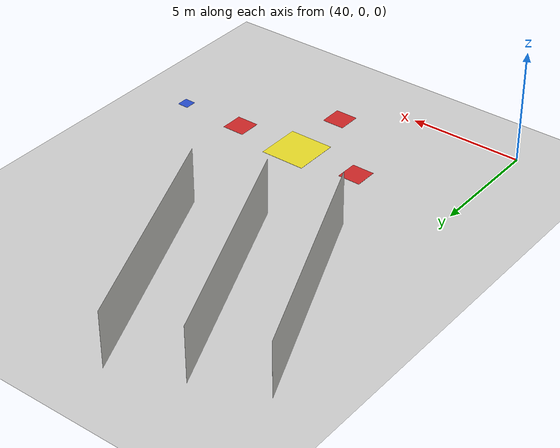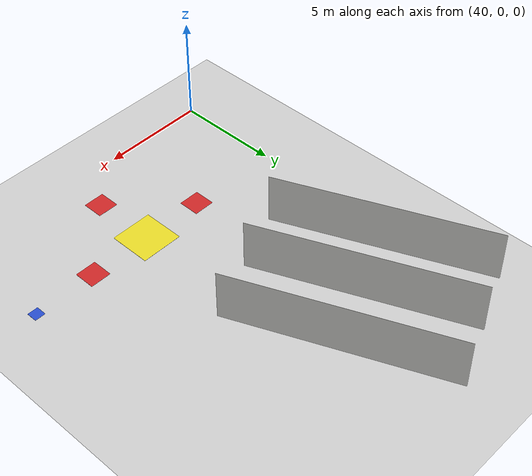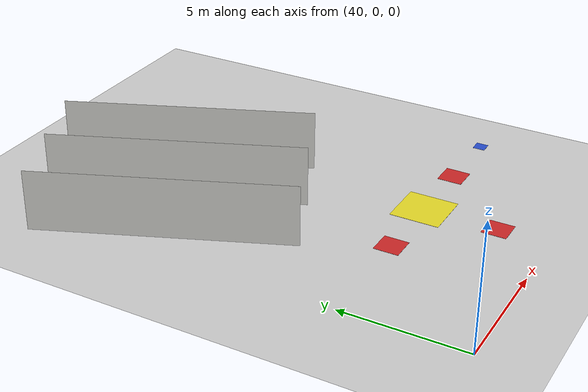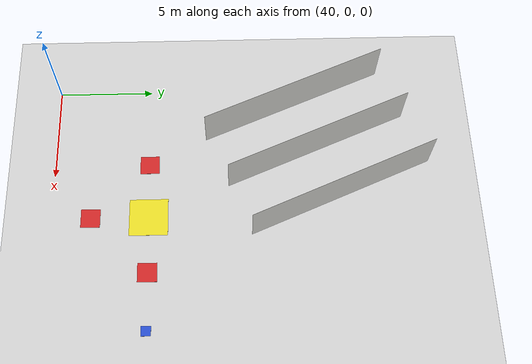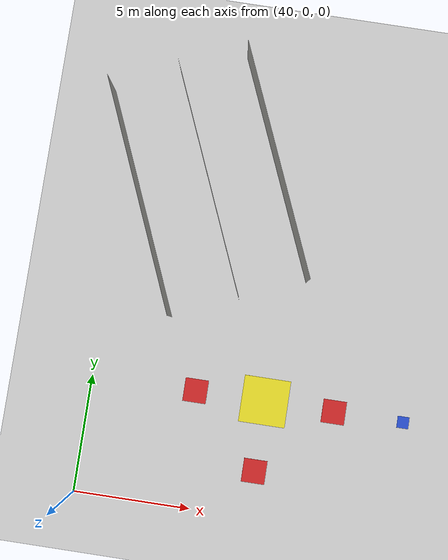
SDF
<sdf version="1.6">
 <world name="default">
  <model name="ground_plane">
   <static>1</static>
   <link name="link">
    <collision name="collision">
     <geometry><plane><normal>0 0 1</normal><size>100 100</size></plane></geometry>
     <surface><friction><ode><mu>100</mu><mu2>50</mu2></ode></friction></surface>
    </collision>
    <visual name="visual">
     <cast_shadows>0</cast_shadows>
     <geometry><plane><normal>0 0 1</normal><size>100 100</size></plane></geometry>
     <material>
      <script><uri>file://media/materials/scripts/gazebo.material</uri><name>Gazebo/Grey</name></script>
     </material>
    </visual>
   </link>
  </model>
  <model name="35">
   <pose>43.75 13.875 0 0 -0 0</pose>
   <link name="Wall_2">
    <collision name="Wall_2_Collision">
     <geometry><box><size>10.2688 0.001 2.5</size></box></geometry>
     <pose>0 0 1.25 0 -0 0</pose>
    </collision>
    <visual name="Wall_2_Visual">
     <pose>0 0 1.25 0 -0 0</pose>
     <geometry><box><size>10.2688 0.001 2.5</size></box></geometry>
     <material>
      <script><uri>file://media/materials/scripts/gazebo.material</uri><name>Gazebo/CeilingTiled</name></script>
      <ambient>0.435294 0.796078 0.67451 1</ambient>
     </material>
    </visual>
    <pose>0 0 0 0 -0 1.9706</pose>
   </link>
   <static>1</static>
  </model>
  <model name="35_clone">
   <pose>40.9866 12.7073 0 0 -0 0</pose>
   <link name="Wall_2">
    <collision name="Wall_2_Collision">
     <geometry><box><size>10.2688 0.001 2.5</size></box></geometry>
     <pose>0 0 1.25 0 -0 0</pose>
    </collision>
    <visual name="Wall_2_Visual">
     <pose>0 0 1.25 0 -0 0</pose>
     <geometry><box><size>10.2688 0.001 2.5</size></box></geometry>
     <material>
      <script><uri>file://media/materials/scripts/gazebo.material</uri><name>Gazebo/CeilingTiled</name></script>
      <ambient>0.435294 0.796078 0.67451 1</ambient>
     </material>
    </visual>
    <pose>0 0 0 0 -0 1.9706</pose>
   </link>
   <static>1</static>
  </model>
  <model name="35_clone_0">
   <pose>46.5134 15.0427 0 0 -0 0</pose>
   <link name="Wall_2">
    <collision name="Wall_2_Collision">
     <geometry><box><size>10.2688 0.001 2.5</size></box></geometry>
     <pose>0 0 1.25 0 -0 0</pose>
    </collision>
    <visual name="Wall_2_Visual">
     <pose>0 0 1.25 0 -0 0</pose>
     <geometry><box><size>10.2688 0.001 2.5</size></box></geometry>
     <material>
      <script><uri>file://media/materials/scripts/gazebo.material</uri><name>Gazebo/CeilingTiled</name></script>
      <ambient>0.435294 0.796078 0.67451 1</ambient>
     </material>
    </visual>
    <pose>0 0 0 0 -0 1.9706</pose>
   </link>
   <static>1</static>
  </model>
  <model name="my_objectT4">
   <link name="my_box">
    <inertial>
     <mass>1</mass>
     <inertia><ixx>1</ixx><ixy>0</ixy><ixz>0</ixz><iyy>100</iyy><iyz>0</iyz><izz>1</izz></inertia>
    </inertial>
    <collision name="my_box_collision"><geometry><box><size>2 2 0.01</size></box></geometry></collision>
    <visual name="my_box_visual">
     <geometry><box><size>2 2 0.01</size></box></geometry>
     <material>
      <script><name>Gazebo/Yellow</name><uri>file://media/materials/scripts/gazebo.material</uri></script>
     </material>
    </visual>
   </link>
   <pose>47.5009 4.99781 0.114979 1.4e-05 8e-06 -5e-06</pose>
  </model>
  <model name="my_objecteg3w1">
   <link name="my_box">
    <inertial>
     <mass>1</mass>
     <inertia><ixx>1</ixx><ixy>0</ixy><ixz>0</ixz><iyy>100</iyy><iyz>0</iyz><izz>1</izz></inertia>
    </inertial>
    <collision name="my_box_collision"><geometry><box><size>1 1 0.01</size></box></geometry></collision>
    <visual name="my_box_visual">
     <geometry><box><size>1 1 0.01</size></box></geometry>
     <material>
      <script><name>Gazebo/Red</name><uri>file://media/materials/scripts/gazebo.material</uri></script>
     </material>
    </visual>
   </link>
   <pose>44.5 5 0.104995 0 -0 0</pose>
  </model>
  <model name="my_objecteg3w2">
   <link name="my_box">
    <inertial>
     <mass>1</mass>
     <inertia><ixx>1</ixx><ixy>0</ixy><ixz>0</ixz><iyy>100</iyy><iyz>0</iyz><izz>1</izz></inertia>
    </inertial>
    <collision name="my_box_collision"><geometry><box><size>1 1 0.01</size></box></geometry></collision>
    <visual name="my_box_visual">
     <geometry><box><size>1 1 0.01</size></box></geometry>
     <material>
      <script><name>Gazebo/Red</name><uri>file://media/materials/scripts/gazebo.material</uri></script>
     </material>
    </visual>
   </link>
   <pose>50.5008 4.99627 0.114964 1e-06 1e-05 0.000342</pose>
  </model>
  <model name="my_objecteg3w3">
   <link name="my_box">
    <inertial>
     <mass>1</mass>
     <inertia><ixx>1</ixx><ixy>0</ixy><ixz>0</ixz><iyy>100</iyy><iyz>0</iyz><izz>1</izz></inertia>
    </inertial>
    <collision name="my_box_collision"><geometry><box><size>1 1 0.01</size></box></geometry></collision>
    <visual name="my_box_visual">
     <geometry><box><size>1 1 0.01</size></box></geometry>
     <material>
      <script><name>Gazebo/Red</name><uri>file://media/materials/scripts/gazebo.material</uri></script>
     </material>
    </visual>
   </link>
   <pose>47.5 2 0.104995 0 -0 0</pose>
  </model>
  <model name="my_objectg1w1">
   <link name="my_box">
    <inertial>
     <mass>1</mass>
     <inertia><ixx>1</ixx><ixy>0</ixy><ixz>0</ixz><iyy>100</iyy><iyz>0</iyz><izz>1</izz></inertia>
    </inertial>
    <collision name="my_box_collision"><geometry><box><size>0.5 0.5 0.01</size></box></geometry></collision>
    <visual name="my_box_visual">
     <geometry><box><size>0.5 0.5 0.01</size></box></geometry>
     <material>
      <script><name>Gazebo/Blue</name><uri>file://media/materials/scripts/gazebo.material</uri></script>
     </material>
    </visual>
   </link>
   <pose>47.4973 5.0042 0.104998 1.4e-05 8e-06 -0.000938</pose>
  </model>
  <model name="my_objectg1w2">
   <link name="my_box">
    <inertial>
     <mass>1</mass>
     <inertia><ixx>1</ixx><ixy>0</ixy><ixz>0</ixz><iyy>100</iyy><iyz>0</iyz><izz>1</izz></inertia>
    </inertial>
    <collision name="my_box_collision"><geometry><box><size>0.5 0.5 0.01</size></box></geometry></collision>
    <visual name="my_box_visual">
     <geometry><box><size>0.5 0.5 0.01</size></box></geometry>
     <material>
      <script><name>Gazebo/Blue</name><uri>file://media/materials/scripts/gazebo.material</uri></script>
     </material>
    </visual>
   </link>
   <pose>50.4977 5.00214 0.104964 1e-06 9e-06 0.00113</pose>
  </model>
  <model name="my_objectg1w3">
   <link name="my_box">
    <inertial>
     <mass>1</mass>
     <inertia><ixx>1</ixx><ixy>0</ixy><ixz>0</ixz><iyy>100</iyy><iyz>0</iyz><izz>1</izz></inertia>
    </inertial>
    <collision name="my_box_collision"><geometry><box><size>0.5 0.5 0.01</size></box></geometry></collision>
    <visual name="my_box_visual">
     <geometry><box><size>0.5 0.5 0.01</size></box></geometry>
     <material>
      <script><name>Gazebo/Blue</name><uri>file://media/materials/scripts/gazebo.material</uri></script>
     </material>
    </visual>
   </link>
   <pose>53.4976 5.00362 0.104991 0 0 -0.000414</pose>
  </model>
 </world>
</sdf>
